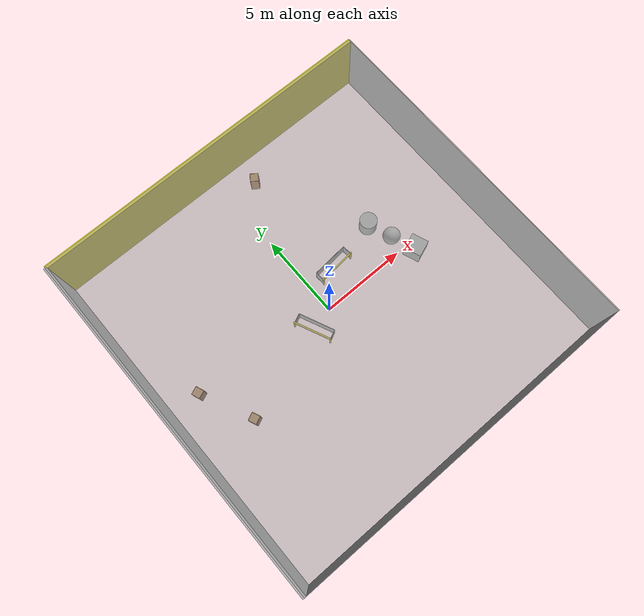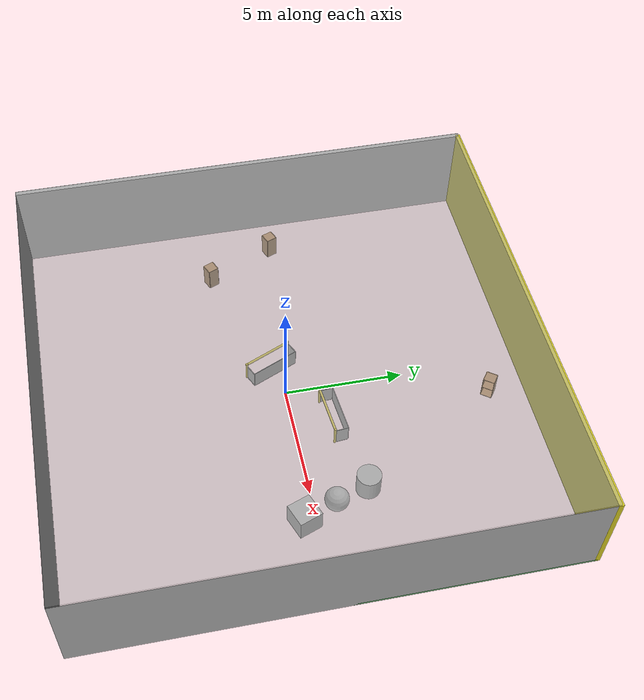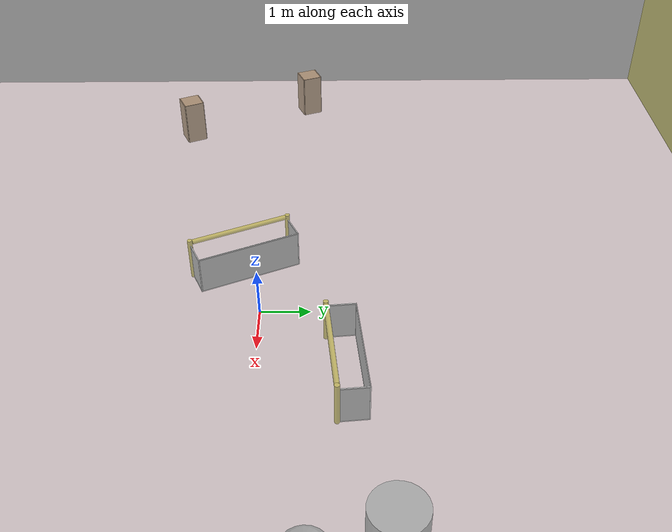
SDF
<sdf version="1.4">
 <world name="default">
  <physics type="ode">
   <max_step_size>0.001</max_step_size>
   <real_time_factor>1</real_time_factor>
   <real_time_update_rate>1000</real_time_update_rate>
   <gravity>0 0 -9.8</gravity>
  </physics>
  <scene><ambient>0.4 0.4 0.4 1</ambient><background>0.7 0.7 0.7 1</background><shadows>1</shadows></scene>
  <model name="Surrounding">
   <static>1</static>
   <link name="Ceiling">
    <collision name="Ceiling_Collision"><geometry><box><size>20 20 0.1</size></box></geometry></collision>
    <visual name="Ceiling_Visual">
     <geometry><box><size>20 20 0.1</size></box></geometry>
     <material>
      <script><uri>file://media/materials/scripts/gazebo.material</uri><name>Gazebo/GreyTransparent</name></script>
     </material>
    </visual>
    <pose>0 0 4.05 0 0 0</pose>
   </link>
   <link name="Wall_South">
    <collision name="Wall_South_Collision">
     <geometry><box><size>20 0 4</size></box></geometry>
     <pose>0 0 2 0 -0 0</pose>
    </collision>
    <visual name="Wall_South_Visual">
     <pose>0 0 2 0 -0 0</pose>
     <geometry><box><size>20 0 4</size></box></geometry>
     <material>
      <script><uri>file://media/materials/scripts/gazebo.material</uri><name>Gazebo/Black</name></script>
     </material>
    </visual>
    <velocity_decay><linear>0</linear><angular>0</angular></velocity_decay>
    <pose>0 -10 0 0 -0 0</pose>
   </link>
   <link name="Wall_East">
    <collision name="Wall_21_Collision">
     <geometry><box><size>20 0 4</size></box></geometry>
     <pose>0 0 2 0 -0 0</pose>
    </collision>
    <visual name="Wall_21_Visual">
     <pose>0 0 2 0 -0 0</pose>
     <geometry><box><size>20 0 4</size></box></geometry>
     <material>
      <script><uri>file://media/materials/scripts/gazebo.material</uri><name>Gazebo/JointAnchor</name></script>
     </material>
    </visual>
    <velocity_decay><linear>0</linear><angular>0</angular></velocity_decay>
    <pose>10 0 0 0 -0 1.5708</pose>
   </link>
   <link name="Wall_North">
    <collision name="Wall_22_Collision">
     <geometry><box><size>20 0.2 4</size></box></geometry>
     <pose>0 0 2 0 -0 0</pose>
    </collision>
    <visual name="Wall_22_Visual">
     <pose>0 0 2 0 -0 0</pose>
     <geometry><box><size>20 0.2 4</size></box></geometry>
     <material>
      <script><uri>file://media/materials/scripts/gazebo.material</uri><name>Gazebo/YellowGlow</name></script>
     </material>
    </visual>
    <velocity_decay><linear>0</linear><angular>0</angular></velocity_decay>
    <pose>0 10 0 0 -0 0</pose>
   </link>
   <link name="Wall_West">
    <collision name="Wall_23_Collision">
     <geometry><box><size>20 0.2 4</size></box></geometry>
     <pose>0 0 2 0 -0 0</pose>
    </collision>
    <visual name="Wall_23_Visual">
     <pose>0 0 2 0 -0 0</pose>
     <geometry><box><size>20 0.2 4</size></box></geometry>
     <material>
      <script><uri>file://media/materials/scripts/gazebo.material</uri><name>Gazebo/LightOn</name></script>
     </material>
    </visual>
    <velocity_decay><linear>0</linear><angular>0</angular></velocity_decay>
    <pose>-10 0 0 0 0 -1.5708</pose>
   </link>
   <link name="Ground_link">
    <collision name="collision">
     <pose>0 0 .05 0 -0 0</pose>
     <geometry><box><size>20 20 0.1</size></box></geometry>
    </collision>
    <visual name="visual">
     <pose>0 0 .05 0 -0 0</pose>
     <geometry><box><size>20 20 0.1</size></box></geometry>
     <material>
      <script><uri>file://media/materials/scripts/gazebo.material</uri><name>Gazebo/GreenTransparent</name></script>
     </material>
    </visual>
   </link>
   <static>1</static>
  </model>
  <spherical_coordinates>
   <surface_model>EARTH_WGS84</surface_model>
   <latitude_deg>0</latitude_deg>
   <longitude_deg>0</longitude_deg>
   <elevation>0</elevation>
   <heading_deg>0</heading_deg>
  </spherical_coordinates>
  <light name="lightball_0" type="diffuse">
   <diffuse>0.8 0.8 0.8 1</diffuse>
   <specular>0.2 0.2 0.2 1</specular>
   <attenuation>
    <range>100</range>
    <constant>0.7</constant>
    <linear>0.01</linear>
    <quadratic>0.001</quadratic>
   </attenuation>
   <direction>-0.5 0.1 -0.9</direction>
   <pose>8.31984834495 0.216205343445 0.915979169938 0 0 0</pose>
  </light>
  <light name="lightball_1" type="diffuse">
   <diffuse>0.8 0.8 0.8 1</diffuse>
   <specular>0.2 0.2 0.2 1</specular>
   <attenuation>
    <range>100</range>
    <constant>0.7</constant>
    <linear>0.01</linear>
    <quadratic>0.001</quadratic>
   </attenuation>
   <direction>-0.5 0.1 -0.9</direction>
   <pose>-0.738799534016 8.65432787201 3.82402418557 0 0 0</pose>
  </light>
  <light name="lightball_2" type="diffuse">
   <diffuse>0.8 0.8 0.8 1</diffuse>
   <specular>0.2 0.2 0.2 1</specular>
   <attenuation>
    <range>100</range>
    <constant>0.7</constant>
    <linear>0.01</linear>
    <quadratic>0.001</quadratic>
   </attenuation>
   <direction>-0.5 0.1 -0.9</direction>
   <pose>-8.60043912102 -8.03579349163 3.47207759813 0 0 0</pose>
  </light>
  <light name="lightball_3" type="diffuse">
   <diffuse>0.8 0.8 0.8 1</diffuse>
   <specular>0.2 0.2 0.2 1</specular>
   <attenuation>
    <range>100</range>
    <constant>0.7</constant>
    <linear>0.01</linear>
    <quadratic>0.001</quadratic>
   </attenuation>
   <direction>-0.5 0.1 -0.9</direction>
   <pose>6.91219997069 -8.98143938169 3.38993375143 0 0 0</pose>
  </light>
  <include><uri>model://cabinet</uri><pose>-6.80727196897 -2.06020342133 0 0 0 0.419324995265</pose></include>
  <include><uri>model://cabinet</uri><pose>-8.1934215188 0.854333080485 0 0 0 0.375440567575</pose></include>
  <include>
   <uri>model://robocup_3Dsim_goal</uri>
   <pose>-1.587465387 -0.459840759303 0 0 0 0.423414732328</pose>
  </include>
  <include>
   <uri>model://robocup_3Dsim_goal</uri>
   <pose>1.76509512179 1.39659697709 0 0 0 1.66021929113</pose>
  </include>
  <include><uri>model://cabinet</uri><pose>1.60106427499 8.34199608416 0 0 0 2.50249150762</pose></include>
  <include>
   <uri>model://textured_shapes</uri>
   <pose>5.45094167778 0.988074077776 0 0 0 0.361292297521</pose>
  </include>
 </world>
</sdf>

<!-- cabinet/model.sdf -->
<sdf version="1.5">
  <model name="cabinet">
    <static>true</static>
    <link name="cabinet_bottom_plate">
      <inertial>
        <pose>0 0 -1 0 0 0</pose>
        <inertia>
          <ixx>2.050000</ixx>
          <ixy>0</ixy>
          <ixz>0</ixz>
          <iyy>2.050000</iyy>
          <iyz>0</iyz>
          <izz>2.050000</izz>
        </inertia>
        <mass>25.000000</mass>
      </inertial>
      <collision name="cabinet_bottom_plate_geom">
        <pose>0 0 0.010000 0 0 0</pose>
        <geometry>
          <box>
            <size>0.450000 0.450000 0.020000</size>
          </box>
        </geometry>
      </collision>
      <visual name="cabinet_bottom_plate_geom_visual">
        <pose>0 0 0.010000 0 0 0</pose>
        <geometry>
          <box>
            <size>0.450000 0.450000 0.020000</size>
          </box>
        </geometry>
        <material>
          <script>
            <uri>model://media/materials/scripts/gazebo.material</uri>
            <name>Gazebo/Wood</name>
          </script>
        </material>
      </visual>
      <collision name="cabinet_bottom_plate_geom_cabinet_back_plate">
        <pose>0.235000 0 0.510000 0 0 0</pose>
        <geometry>
          <box>
            <size>0.020000 0.450000 1.020000</size>
          </box>
        </geometry>
      </collision>
      <visual name="cabinet_bottom_plate_geom_cabinet_back_plate_visual">
        <pose>0.235000 0 0.510000 0 0 0</pose>
        <geometry>
          <box>
            <size>0.020000 0.450000 1.020000</size>
          </box>
        </geometry>
        <material>
          <script>
            <uri>model://media/materials/scripts/gazebo.material</uri>
            <name>Gazebo/Wood</name>
          </script>
        </material>
      </visual>
      <collision name="cabinet_bottom_plate_geom_cabinet_left_plate">
        <pose>0 0.235000 0.510000 0 0 0</pose>
        <geometry>
          <box>
            <size>0.450000 0.020000 1.020000</size>
          </box>
        </geometry>
      </collision>
      <visual name="cabinet_bottom_plate_geom_cabinet_left_plate_visual">
        <pose>0 0.235000 0.510000 0 0 0</pose>
        <geometry>
          <box>
            <size>0.450000 0.020000 1.020000</size>
          </box>
        </geometry>
        <material>
          <script>
            <uri>model://media/materials/scripts/gazebo.material</uri>
            <name>Gazebo/Wood</name>
          </script>
        </material>
      </visual>
      <collision name="cabinet_bottom_plate_geom_cabinet_middle_plate">
        <pose>0 0 0.510000 0 0 0</pose>
        <geometry>
          <box>
            <size>0.450000 0.450000 0.020000</size>
          </box>
        </geometry>
      </collision>
      <visual name="cabinet_bottom_plate_geom_cabinet_middle_plate_visual">
        <pose>0 0 0.510000 0 0 0</pose>
        <geometry>
          <box>
            <size>0.450000 0.450000 0.020000</size>
          </box>
        </geometry>
        <material>
          <script>
            <uri>model://media/materials/scripts/gazebo.material</uri>
            <name>Gazebo/Wood</name>
          </script>
        </material>
      </visual>
      <collision name="cabinet_bottom_plate_geom_cabinet_right_plate">
        <pose>0 -0.235000 0.510000 0 0 0</pose>
        <geometry>
          <box>
            <size>0.450000 0.020000 1.020000</size>
          </box>
        </geometry>
      </collision>
      <visual name="cabinet_bottom_plate_geom_cabinet_right_plate_visual">
        <pose>0 -0.235000 0.510000 0 0 0</pose>
        <geometry>
          <box>
            <size>0.450000 0.020000 1.020000</size>
          </box>
        </geometry>
        <material>
          <script>
            <uri>model://media/materials/scripts/gazebo.material</uri>
            <name>Gazebo/Wood</name>
          </script>
        </material>
      </visual>
      <collision name="cabinet_bottom_plate_geom_cabinet_top_plate">
        <pose>0 0 1.010000 0 0 0</pose>
        <geometry>
          <box>
            <size>0.450000 0.450000 0.020000</size>
          </box>
        </geometry>
      </collision>
      <visual name="cabinet_bottom_plate_geom_cabinet_top_plate_visual">
        <pose>0 0 1.010000 0 0 0</pose>
        <geometry>
          <box>
            <size>0.450000 0.450000 0.020000</size>
          </box>
        </geometry>
        <material>
          <script>
            <uri>model://media/materials/scripts/gazebo.material</uri>
            <name>Gazebo/Wood</name>
          </script>
        </material>
      </visual>
    </link>
  </model>
</sdf>

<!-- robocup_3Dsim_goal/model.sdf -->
<sdf version="1.5">
  <model name="robocup_3d_goal">
    <static>true</static>
    <link name="left_post">
      <pose>0 1.05 0.45 0 0 0</pose>
      <collision name="collision">
        <geometry>
          <cylinder>
            <radius>0.05</radius>
            <length>0.9</length>
          </cylinder>
        </geometry>
      </collision>
      <visual name="visual">
        <geometry>
          <cylinder>
            <radius>0.05</radius>
            <length>0.9</length>
          </cylinder>
        </geometry>
        <material>
          <script>
            <uri>file://media/materials/scripts/gazebo.material</uri>
            <name>Gazebo/ZincYellow</name>
          </script>
        </material>
      </visual>
    </link>
    <link name="left_support_horiz_lower">
      <pose>0.30 1.05 0.01 0 0 0</pose>
      <collision name="collision">
        <geometry>
          <box>
            <size>0.50 0.02 0.02</size>
          </box>
        </geometry>
      </collision>
      <visual name="visual">
        <geometry>
          <box>
            <size>0.50 0.02 0.02</size>
          </box>
        </geometry>
        <material>
          <script>
            <uri>file://media/materials/scripts/gazebo.material</uri>
            <name>Gazebo/White</name>
          </script>
        </material>
      </visual>
    </link>
    <link name="left_support_horiz_upper">
      <pose>0.30 1.05 0.79 0 0 0</pose>
      <collision name="collision">
        <geometry>
          <box>
            <size>0.50 0.02 0.02</size>
          </box>
        </geometry>
      </collision>
      <visual name="visual">
        <geometry>
          <box>
            <size>0.50 0.02 0.02</size>
          </box>
        </geometry>
        <material>
          <script>
            <uri>file://media/materials/scripts/gazebo.material</uri>
            <name>Gazebo/White</name>
          </script>
        </material>
      </visual>
    </link>
    <link name="left_support_vertical">
      <pose>0.56 1.05 0.4 0 1.5708 0</pose>
      <collision name="collision">
        <geometry>
          <box>
            <size>0.80 0.02 0.02</size>
          </box>
        </geometry>
      </collision>
      <visual name="visual">
        <geometry>
          <box>
            <size>0.80 0.02 0.02</size>
          </box>
        </geometry>
        <material>
          <script>
            <uri>file://media/materials/scripts/gazebo.material</uri>
            <name>Gazebo/White</name>
          </script>
        </material>
      </visual>
    </link>
    <link name="right_support_horiz_lower">
      <pose>0.30 -1.05 0.01 0 0 0</pose>
      <collision name="collision">
        <geometry>
          <box>
            <size>0.50 0.02 0.02</size>
          </box>
        </geometry>
      </collision>
      <visual name="visual">
        <geometry>
          <box>
            <size>0.50 0.02 0.02</size>
          </box>
        </geometry>
        <material>
          <script>
            <uri>file://media/materials/scripts/gazebo.material</uri>
            <name>Gazebo/White</name>
          </script>
        </material>
      </visual>
    </link>
    <link name="right_support_horiz_upper">
      <pose>0.30 -1.05 0.79 0 0 0</pose>
      <collision name="collision">
        <geometry>
          <box>
            <size>0.50 0.02 0.02</size>
          </box>
        </geometry>
      </collision>
      <visual name="visual">
        <geometry>
          <box>
            <size>0.50 0.02 0.02</size>
          </box>
        </geometry>
        <material>
          <script>
            <uri>file://media/materials/scripts/gazebo.material</uri>
            <name>Gazebo/White</name>
          </script>
        </material>
      </visual>
    </link>
    <link name="right_support_vertical">
      <pose>0.56 -1.05 0.4 0 1.5708 0</pose>
      <collision name="collision">
        <geometry>
          <box>
            <size>0.80 0.02 0.02</size>
          </box>
        </geometry>
      </collision>
      <visual name="visual">
        <geometry>
          <box>
            <size>0.80 0.02 0.02</size>
          </box>
        </geometry>
        <material>
          <script>
            <uri>file://media/materials/scripts/gazebo.material</uri>
            <name>Gazebo/White</name>
          </script>
        </material>
      </visual>
    </link>
    <link name="center_support_horiz_lower">
      <pose>0.56 0 0.01 0 1.5708 0</pose>
      <collision name="collision">
        <geometry>
          <box>
            <size>0.02 2.08 0.02</size>
          </box>
        </geometry>
      </collision>
      <visual name="visual">
        <geometry>
          <box>
            <size>0.02 2.08 0.02</size>
          </box>
        </geometry>
        <material>
          <script>
            <uri>file://media/materials/scripts/gazebo.material</uri>
            <name>Gazebo/White</name>
          </script>
        </material>
      </visual>
    </link>
    <link name="center_support_horiz_upper">
      <pose>0.56 0 0.79 0 1.5708 0</pose>
      <collision name="collision">
        <geometry>
          <box>
            <size>0.02 2.08 0.02</size>
          </box>
        </geometry>
      </collision>
      <visual name="visual">
        <geometry>
          <box>
            <size>0.02 2.08 0.02</size>
          </box>
        </geometry>
        <material>
          <script>
            <uri>file://media/materials/scripts/gazebo.material</uri>
            <name>Gazebo/White</name>
          </script>
        </material>
      </visual>
    </link>
    <link name="right_post">
      <pose>0 -1.05 0.45 0 0 0</pose>
      <collision name="collision">
        <geometry>
          <cylinder>
            <radius>0.05</radius>
            <length>0.9</length>
          </cylinder>
        </geometry>
      </collision>
      <visual name="visual">
        <geometry>
          <cylinder>
            <radius>0.05</radius>
            <length>0.9</length>
          </cylinder>
        </geometry>
        <material>
          <script>
            <uri>file://media/materials/scripts/gazebo.material</uri>
            <name>Gazebo/ZincYellow</name>
          </script>
        </material>
      </visual>
    </link>
    <link name="crossbar">
      <pose>0 0 0.85 1.57 1.57 0</pose>
      <collision name="collision">
        <geometry>
          <cylinder>
            <radius>0.05</radius>
            <length>2.0</length>
          </cylinder>
        </geometry>
      </collision>
      <visual name="visual">
        <geometry>
          <cylinder>
            <radius>0.05</radius>
            <length>2.0</length>
          </cylinder>
        </geometry>
        <material>
          <script>
            <uri>file://media/materials/scripts/gazebo.material</uri>
            <name>Gazebo/ZincYellow</name>
          </script>
        </material>
      </visual>
    </link>
    <link name="center_net">
      <pose>0.56 0 0.40 0 0 0</pose>
      <collision name="collision">
        <geometry>
          <box>
            <size>0.01 2.1 0.80</size>
          </box>
        </geometry>
      </collision>
      <visual name="visual">
        <geometry>
          <box>
            <size>0.01 2.1 0.80</size>
          </box>
        </geometry>
        <material>
          <script>
            <uri>model://../model_source/models/robocup09_spl_field/materials/scripts/</uri>
            <uri>model://../model_source/models/robocup09_spl_field/materials/textures/</uri>
            <name>RoboCup/Net</name>
          </script>
        </material>
      </visual>
    </link>
    <link name="left_net">
      <pose>0.30 1.05 0.40 0 0 0</pose>
      <collision name="collision">
        <geometry>
          <box>
            <size>0.50 0.01 0.76</size>
          </box>
        </geometry>
      </collision>
      <visual name="visual">
        <geometry>
          <box>
            <size>0.50 0.01 0.76</size>
          </box>
        </geometry>
        <material>
          <script>
            <uri>model://../model_source/models/robocup09_spl_field/materials/scripts/</uri>
            <uri>model://../model_source/models/robocup09_spl_field/materials/textures/</uri>
            <name>RoboCup/Net</name>
          </script>
        </material>
      </visual>
    </link>
    <link name="right_net">
      <pose>0.30 -1.05 0.40 0 0 0</pose>
      <collision name="collision">
        <geometry>
          <box>
            <size>0.50 0.01 0.76</size>
          </box>
        </geometry>
      </collision>
      <visual name="visual">
        <geometry>
          <box>
            <size>0.50 0.01 0.76</size>
          </box>
        </geometry>
        <material>
          <script>
            <uri>model://../model_source/models/robocup09_spl_field/materials/scripts/</uri>
            <uri>model://../model_source/models/robocup09_spl_field/materials/textures/</uri>
            <name>RoboCup/Net</name>
          </script>
        </material>
      </visual>
    </link>
  </model>
</sdf>

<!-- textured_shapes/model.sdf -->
<sdf version="1.6">
  <model name="textured_shapes">
    <pose>0 0 0.5 0 0 0</pose>
    <link name="box">
      <pose>0 -1.5 0 0 0 0</pose>
      <collision name="collision">
        <geometry>
          <box>
            <size>1 1 1</size>
          </box>
        </geometry>
      </collision>
      <visual name="visual">
        <geometry>
          <box>
            <size>1 1 1</size>
          </box>
        </geometry>
        <material>
          <script>
            <uri>model://../model_source/models/textured_shapes/materials/scripts</uri>
            <uri>model://../model_source/models/textured_shapes/materials/textures</uri>
            <name>TexturedShape/Squares</name>
          </script>
        </material>
      </visual>
    </link>
    <link name="sphere">
      <collision name="collision">
        <geometry>
          <sphere>
            <radius>0.5</radius>
          </sphere>
        </geometry>
      </collision>
      <visual name="visual">
        <geometry>
          <sphere>
            <radius>0.5</radius>
          </sphere>
        </geometry>
        <material>
          <script>
            <uri>model://../model_source/models/textured_shapes/materials/scripts</uri>
            <uri>model://../model_source/models/textured_shapes/materials/textures</uri>
            <name>TexturedShape/Squares</name>
          </script>
        </material>
      </visual>
    </link>
    <link name="cylinder">
      <pose>0 1.5 0 0 0 0</pose>
      <collision name="collision">
        <geometry>
          <cylinder>
            <radius>0.5</radius>
            <length>1</length>
          </cylinder>
        </geometry>
      </collision>
      <visual name="visual">
        <geometry>
          <cylinder>
            <radius>0.5</radius>
            <length>1</length>
          </cylinder>
        </geometry>
        <material>
          <script>
            <uri>model://../model_source/models/textured_shapes/materials/scripts</uri>
            <uri>model://../model_source/models/textured_shapes/materials/textures</uri>
            <name>TexturedShape/Squares</name>
          </script>
        </material>
      </visual>
    </link>
  </model>
</sdf>
